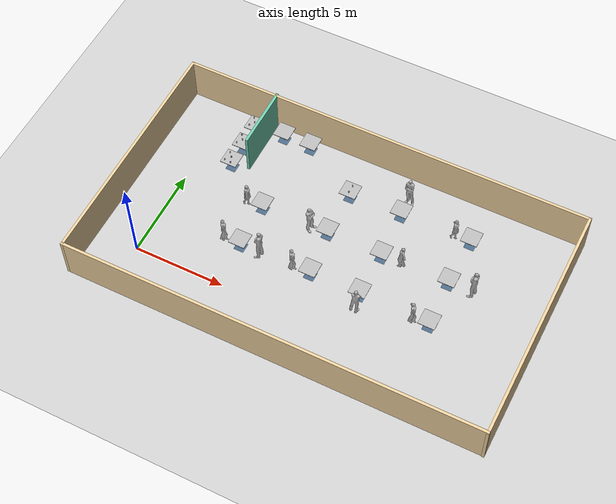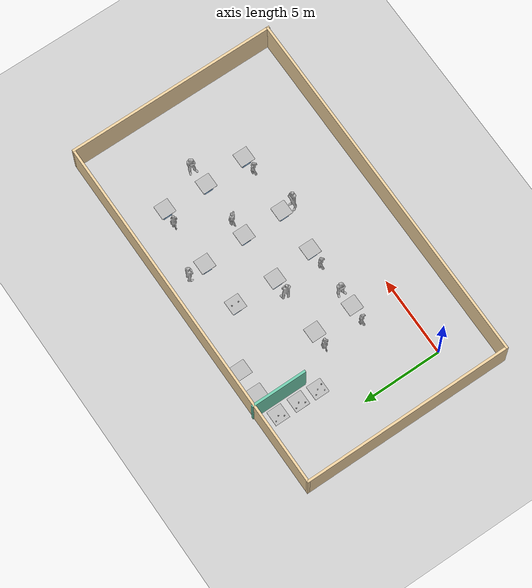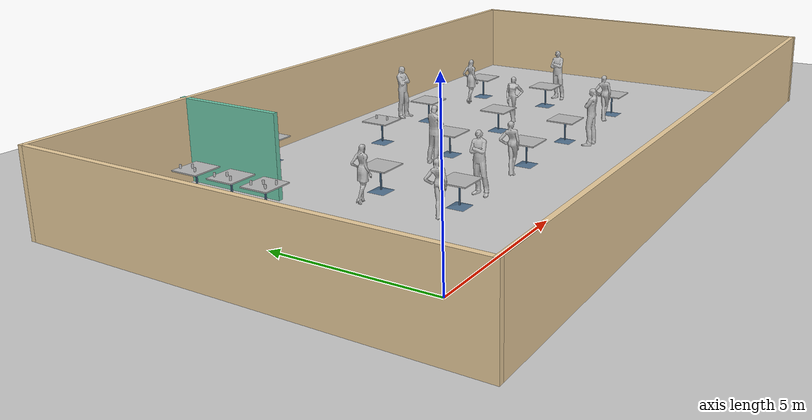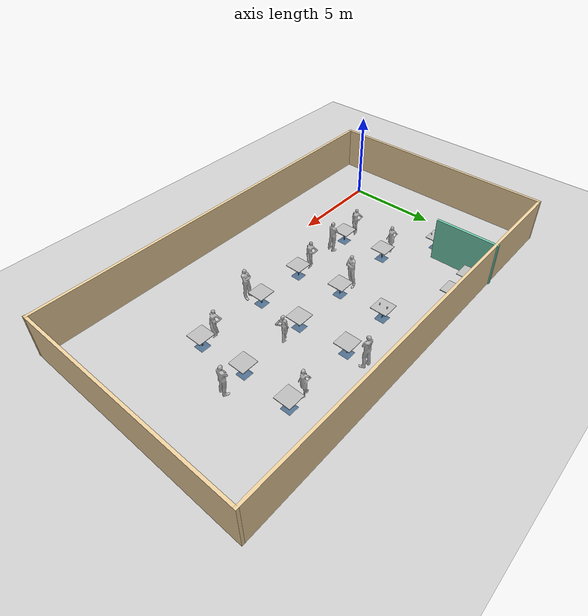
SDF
<sdf version="1.6">
 <world name="default">
  <light name="sun" type="directional">
   <pose>0 0 10 0 -0 0</pose>
   <diffuse>0.8 0.8 0.8 1</diffuse>
   <specular>0.2 0.2 0.2 1</specular>
   <attenuation>
    <range>1000</range>
    <constant>0.9</constant>
    <linear>0.01</linear>
    <quadratic>0.001</quadratic>
   </attenuation>
   <direction>-0.5 0.1 -0.9</direction>
  </light>
  <model name="ground_plane">
   <static>1</static>
   <link name="link">
    <collision name="collision">
     <geometry><plane><normal>0 0 1</normal><size>100 100</size></plane></geometry>
     <surface><friction><ode><mu>100</mu><mu2>50</mu2></ode></friction></surface>
    </collision>
    <visual name="visual">
     <cast_shadows>0</cast_shadows>
     <geometry><plane><normal>0 0 1</normal><size>100 100</size></plane></geometry>
     <material>
      <script><uri>file://media/materials/scripts/gazebo.material</uri><name>Gazebo/Grey</name></script>
     </material>
    </visual>
   </link>
  </model>
  <gravity>0 0 -9.8</gravity>
  <magnetic_field>6e-06 2.3e-05 -4.2e-05</magnetic_field>
  <atmosphere type="adiabatic"/>
  <physics name="default_physics" default="0" type="ode">
   <max_step_size>0.001</max_step_size>
   <real_time_factor>1</real_time_factor>
   <real_time_update_rate>1000</real_time_update_rate>
  </physics>
  <scene><ambient>0.4 0.4 0.4 1</ambient><background>0.7 0.7 0.7 1</background><shadows>1</shadows></scene>
  <audio><device>default</device></audio>
  <spherical_coordinates>
   <surface_model>EARTH_WGS84</surface_model>
   <latitude_deg>0</latitude_deg>
   <longitude_deg>0</longitude_deg>
   <elevation>0</elevation>
   <heading_deg>0</heading_deg>
  </spherical_coordinates>
  <model name="desk_1">
   <static>1</static>
   <link name="link">
    <collision name="surface">
     <pose>0 0 0.755 0 -0 0</pose>
     <geometry><box><size>0.913 0.913 0.04</size></box></geometry>
    </collision>
    <collision name="column">
     <pose>0 0 0.37 0 -0 0</pose>
     <geometry><box><size>0.042 0.042 0.74</size></box></geometry>
    </collision>
    <collision name="base">
     <pose>0 0 0.02 0 -0 0</pose>
     <geometry><box><size>0.56 0.56 0.04</size></box></geometry>
    </collision>
    <visual name="visual">
     <geometry><mesh><uri>model://cafe_table/meshes/cafe_table.dae</uri></mesh></geometry>
    </visual>
   </link>
   <pose>1.93216 9.38736 0 0 -0 0</pose>
  </model>
  <model name="desk_4">
   <static>1</static>
   <link name="link">
    <collision name="surface">
     <pose>0 0 0.755 0 -0 0</pose>
     <geometry><box><size>0.913 0.913 0.04</size></box></geometry>
    </collision>
    <collision name="column">
     <pose>0 0 0.37 0 -0 0</pose>
     <geometry><box><size>0.042 0.042 0.74</size></box></geometry>
    </collision>
    <collision name="base">
     <pose>0 0 0.02 0 -0 0</pose>
     <geometry><box><size>0.56 0.56 0.04</size></box></geometry>
    </collision>
    <visual name="visual">
     <geometry><mesh><uri>model://cafe_table/meshes/cafe_table.dae</uri></mesh></geometry>
    </visual>
   </link>
   <pose>3.55142 9.65624 0 0 -0 0</pose>
  </model>
  <model name="table_1">
   <static>1</static>
   <link name="link">
    <collision name="surface">
     <pose>0 0 0.755 0 -0 0</pose>
     <geometry><box><size>0.913 0.913 0.04</size></box></geometry>
    </collision>
    <collision name="column">
     <pose>0 0 0.37 0 -0 0</pose>
     <geometry><box><size>0.042 0.042 0.74</size></box></geometry>
    </collision>
    <collision name="base">
     <pose>0 0 0.02 0 -0 0</pose>
     <geometry><box><size>0.56 0.56 0.04</size></box></geometry>
    </collision>
    <visual name="visual">
     <geometry><mesh><uri>model://cafe_table/meshes/cafe_table.dae</uri></mesh></geometry>
    </visual>
   </link>
   <pose>4.66793 5.06571 0 0 -0 0</pose>
  </model>
  <model name="table_2">
   <static>1</static>
   <link name="link">
    <collision name="surface">
     <pose>0 0 0.755 0 -0 0</pose>
     <geometry><box><size>0.913 0.913 0.04</size></box></geometry>
    </collision>
    <collision name="column">
     <pose>0 0 0.37 0 -0 0</pose>
     <geometry><box><size>0.042 0.042 0.74</size></box></geometry>
    </collision>
    <collision name="base">
     <pose>0 0 0.02 0 -0 0</pose>
     <geometry><box><size>0.56 0.56 0.04</size></box></geometry>
    </collision>
    <visual name="visual">
     <geometry><mesh><uri>model://cafe_table/meshes/cafe_table.dae</uri></mesh></geometry>
    </visual>
   </link>
   <pose>8.43545 5.1235 0 0 -0 0</pose>
  </model>
  <model name="table_3">
   <static>1</static>
   <link name="link">
    <collision name="surface">
     <pose>0 0 0.755 0 -0 0</pose>
     <geometry><box><size>0.913 0.913 0.04</size></box></geometry>
    </collision>
    <collision name="column">
     <pose>0 0 0.37 0 -0 0</pose>
     <geometry><box><size>0.042 0.042 0.74</size></box></geometry>
    </collision>
    <collision name="base">
     <pose>0 0 0.02 0 -0 0</pose>
     <geometry><box><size>0.56 0.56 0.04</size></box></geometry>
    </collision>
    <visual name="visual">
     <geometry><mesh><uri>model://cafe_table/meshes/cafe_table.dae</uri></mesh></geometry>
    </visual>
   </link>
   <pose>4.74179 2.50458 0 0 -0 0</pose>
  </model>
  <model name="table_4">
   <static>1</static>
   <link name="link">
    <collision name="surface">
     <pose>0 0 0.755 0 -0 0</pose>
     <geometry><box><size>0.913 0.913 0.04</size></box></geometry>
    </collision>
    <collision name="column">
     <pose>0 0 0.37 0 -0 0</pose>
     <geometry><box><size>0.042 0.042 0.74</size></box></geometry>
    </collision>
    <collision name="base">
     <pose>0 0 0.02 0 -0 0</pose>
     <geometry><box><size>0.56 0.56 0.04</size></box></geometry>
    </collision>
    <visual name="visual">
     <geometry><mesh><uri>model://cafe_table/meshes/cafe_table.dae</uri></mesh></geometry>
    </visual>
   </link>
   <pose>8.736 2.5498 0 0 -0 0</pose>
  </model>
  <model name="table_5">
   <static>1</static>
   <link name="link">
    <collision name="surface">
     <pose>0 0 0.755 0 -0 0</pose>
     <geometry><box><size>0.913 0.913 0.04</size></box></geometry>
    </collision>
    <collision name="column">
     <pose>0 0 0.37 0 -0 0</pose>
     <geometry><box><size>0.042 0.042 0.74</size></box></geometry>
    </collision>
    <collision name="base">
     <pose>0 0 0.02 0 -0 0</pose>
     <geometry><box><size>0.56 0.56 0.04</size></box></geometry>
    </collision>
    <visual name="visual">
     <geometry><mesh><uri>model://cafe_table/meshes/cafe_table.dae</uri></mesh></geometry>
    </visual>
   </link>
   <pose>11.5231 5.09156 0 0 -0 0</pose>
  </model>
  <model name="commensale_1">
   <link name="link">
    <inertial>
     <mass>20</mass>
     <inertia><ixx>0</ixx><ixy>0</ixy><ixz>0</ixz><iyy>0</iyy><iyz>0</iyz><izz>0</izz></inertia>
    </inertial>
    <collision name="collision">
     <geometry><mesh><uri>model://citizen_extras_female_02/meshes/mesh.dae</uri></mesh></geometry>
    </collision>
    <visual name="visual">
     <geometry><mesh><uri>model://citizen_extras_female_02/meshes/mesh.dae</uri></mesh></geometry>
    </visual>
   </link>
   <pose>3.73256 5.01477 -0.061494 0.001607 -0.025058 1.66395</pose>
  </model>
  <model name="commensale_5">
   <link name="link">
    <inertial>
     <mass>20</mass>
     <inertia><ixx>0</ixx><ixy>0</ixy><ixz>0</ixz><iyy>0</iyy><iyz>0</iyz><izz>0</izz></inertia>
    </inertial>
    <collision name="collision">
     <geometry><mesh><uri>model://citizen_extras_male_03/meshes/mesh.dae</uri></mesh></geometry>
    </collision>
    <visual name="visual">
     <geometry><mesh><uri>model://citizen_extras_male_03/meshes/mesh.dae</uri></mesh></geometry>
    </visual>
   </link>
   <pose>7.50869 5.1222 0.004913 0.012563 0.002314 1.49916</pose>
  </model>
  <model name="commensale_4">
   <link name="link">
    <inertial>
     <mass>20</mass>
     <inertia><ixx>0</ixx><ixy>0</ixy><ixz>0</ixz><iyy>0</iyy><iyz>0</iyz><izz>0</izz></inertia>
    </inertial>
    <collision name="collision">
     <geometry><mesh><uri>model://citizen_extras_male_03/meshes/mesh.dae</uri></mesh></geometry>
    </collision>
    <visual name="visual">
     <geometry><mesh><uri>model://citizen_extras_male_03/meshes/mesh.dae</uri></mesh></geometry>
    </visual>
   </link>
   <pose>5.79936 2.44152 0.008272 0.012568 0.002313 -1.48164</pose>
  </model>
  <model name="commensale_2">
   <link name="link">
    <inertial>
     <mass>20</mass>
     <inertia><ixx>0</ixx><ixy>0</ixy><ixz>0</ixz><iyy>0</iyy><iyz>0</iyz><izz>0</izz></inertia>
    </inertial>
    <collision name="collision">
     <geometry><mesh><uri>model://citizen_extras_female_03/meshes/mesh.dae</uri></mesh></geometry>
    </collision>
    <visual name="visual">
     <geometry><mesh><uri>model://citizen_extras_female_03/meshes/mesh.dae</uri></mesh></geometry>
    </visual>
   </link>
   <pose>3.77442 2.51764 0.011073 0.011358 0.012634 1.61389</pose>
  </model>
  <model name="commensale_3">
   <link name="link">
    <inertial>
     <mass>20</mass>
     <inertia><ixx>0</ixx><ixy>0</ixy><ixz>0</ixz><iyy>0</iyy><iyz>0</iyz><izz>0</izz></inertia>
    </inertial>
    <collision name="collision">
     <geometry><mesh><uri>model://citizen_extras_female_03/meshes/mesh.dae</uri></mesh></geometry>
    </collision>
    <visual name="visual">
     <geometry><mesh><uri>model://citizen_extras_female_03/meshes/mesh.dae</uri></mesh></geometry>
    </visual>
   </link>
   <pose>7.73792 2.4982 0.001653 0.011346 0.012677 1.50258</pose>
  </model>
  <model name="lattina_1">
   <link name="link">
    <inertial>
     <pose>0 0 0.06 0 -0 0</pose>
     <mass>0.39</mass>
     <inertia>
      <ixx>0.00055575</ixx>
      <ixy>0</ixy>
      <ixz>0</ixz>
      <iyy>0.00055575</iyy>
      <iyz>0</iyz>
      <izz>0.0001755</izz>
     </inertia>
    </inertial>
    <collision name="collision">
     <pose>0.003937 0.004724 -0.18 0 -0 0</pose>
     <geometry><mesh><uri>model://coke_can/meshes/coke_can.dae</uri></mesh></geometry>
     <surface>
      <friction><ode><mu>1</mu><mu2>1</mu2></ode></friction>
      <contact><ode><kp>1e+07</kp><kd>1</kd><min_depth>0.001</min_depth><max_vel>0.1</max_vel></ode></contact>
     </surface>
    </collision>
    <visual name="visual">
     <pose>0.003937 0.004724 -0.18 0 -0 0</pose>
     <geometry><mesh><uri>model://coke_can/meshes/coke_can.dae</uri></mesh></geometry>
    </visual>
   </link>
   <pose>1.6805 9.70392 0.783047 0 -0 0</pose>
  </model>
  <model name="lattina_2">
   <link name="link">
    <inertial>
     <pose>0 0 0.06 0 -0 0</pose>
     <mass>0.39</mass>
     <inertia>
      <ixx>0.00055575</ixx>
      <ixy>0</ixy>
      <ixz>0</ixz>
      <iyy>0.00055575</iyy>
      <iyz>0</iyz>
      <izz>0.0001755</izz>
     </inertia>
    </inertial>
    <collision name="collision">
     <pose>0.003937 0.004724 -0.18 0 -0 0</pose>
     <geometry><mesh><uri>model://coke_can/meshes/coke_can.dae</uri></mesh></geometry>
     <surface>
      <friction><ode><mu>1</mu><mu2>1</mu2></ode></friction>
      <contact><ode><kp>1e+07</kp><kd>1</kd><min_depth>0.001</min_depth><max_vel>0.1</max_vel></ode></contact>
     </surface>
    </collision>
    <visual name="visual">
     <pose>0.003937 0.004724 -0.18 0 -0 0</pose>
     <geometry><mesh><uri>model://coke_can/meshes/coke_can.dae</uri></mesh></geometry>
    </visual>
   </link>
   <pose>1.68411 9.15615 0.782936 0 -0 0</pose>
  </model>
  <model name="lattina_3">
   <link name="link">
    <inertial>
     <pose>0 0 0.06 0 -0 0</pose>
     <mass>0.39</mass>
     <inertia>
      <ixx>0.00055575</ixx>
      <ixy>0</ixy>
      <ixz>0</ixz>
      <iyy>0.00055575</iyy>
      <iyz>0</iyz>
      <izz>0.0001755</izz>
     </inertia>
    </inertial>
    <collision name="collision">
     <pose>0.003937 0.004724 -0.18 0 -0 0</pose>
     <geometry><mesh><uri>model://coke_can/meshes/coke_can.dae</uri></mesh></geometry>
     <surface>
      <friction><ode><mu>1</mu><mu2>1</mu2></ode></friction>
      <contact><ode><kp>1e+07</kp><kd>1</kd><min_depth>0.001</min_depth><max_vel>0.1</max_vel></ode></contact>
     </surface>
    </collision>
    <visual name="visual">
     <pose>0.003937 0.004724 -0.18 0 -0 0</pose>
     <geometry><mesh><uri>model://coke_can/meshes/coke_can.dae</uri></mesh></geometry>
    </visual>
   </link>
   <pose>1.85898 9.42704 0.783798 0 -0 0</pose>
  </model>
  <model name="cafe3_1">
   <pose>9.0601 3.89289 0 0 -0 0</pose>
   <link name="Wall_20">
    <collision name="Wall_20_Collision">
     <geometry><box><size>13.217 0.15 2.5</size></box></geometry>
     <pose>0 0 1.25 0 -0 0</pose>
    </collision>
    <visual name="Wall_20_Visual">
     <pose>0 0 1.25 0 -0 0</pose>
     <geometry><box><size>13.217 0.15 2.5</size></box></geometry>
     <material>
      <script><uri>file://media/materials/scripts/gazebo.material</uri><name>Gazebo/Grey</name></script>
      <ambient>0.921569 0.807843 0.615686 1</ambient>
     </material>
     <meta><layer>0</layer></meta>
    </visual>
    <pose>-11.425 -0.018864 0 0 -0 -1.5708</pose>
   </link>
   <link name="Wall_21">
    <collision name="Wall_21_Collision">
     <geometry><box><size>23 0.15 2.5</size></box></geometry>
     <pose>0 0 1.25 0 -0 0</pose>
    </collision>
    <visual name="Wall_21_Visual">
     <pose>0 0 1.25 0 -0 0</pose>
     <geometry><box><size>23 0.15 2.5</size></box></geometry>
     <material>
      <script><uri>file://media/materials/scripts/gazebo.material</uri><name>Gazebo/Grey</name></script>
      <ambient>0.921569 0.807843 0.615686 1</ambient>
     </material>
     <meta><layer>0</layer></meta>
    </visual>
    <pose>0 -6.55235 0 0 -0 0</pose>
   </link>
   <link name="Wall_25">
    <collision name="Wall_25_Collision">
     <geometry><box><size>23 0.15 2.5</size></box></geometry>
     <pose>0 0 1.25 0 -0 0</pose>
    </collision>
    <visual name="Wall_25_Visual">
     <pose>0 0 1.25 0 -0 0</pose>
     <geometry><box><size>23 0.15 2.5</size></box></geometry>
     <material>
      <script><uri>file://media/materials/scripts/gazebo.material</uri><name>Gazebo/Grey</name></script>
      <ambient>0.921569 0.807843 0.615686 1</ambient>
     </material>
     <meta><layer>0</layer></meta>
    </visual>
    <pose>0 6.51462 0 0 -0 0</pose>
   </link>
   <link name="Wall_28">
    <collision name="Wall_28_Collision">
     <geometry><box><size>13.25 0.15 2.5</size></box></geometry>
     <pose>0 0 1.25 0 -0 0</pose>
    </collision>
    <visual name="Wall_28_Visual">
     <pose>0 0 1.25 0 -0 0</pose>
     <geometry><box><size>13.25 0.15 2.5</size></box></geometry>
     <material>
      <script><uri>file://media/materials/scripts/gazebo.material</uri><name>Gazebo/Grey</name></script>
      <ambient>0.921569 0.807843 0.615686 1</ambient>
     </material>
     <meta><layer>0</layer></meta>
    </visual>
    <pose>11.425 -0.035378 0 0 -0 -1.5708</pose>
   </link>
   <link name="Wall_32">
    <collision name="Wall_32_Collision">
     <geometry><box><size>3.5 0.15 2.5</size></box></geometry>
     <pose>0 0 1.25 0 -0 0</pose>
    </collision>
    <visual name="Wall_32_Visual">
     <pose>0 0 1.25 0 -0 0</pose>
     <geometry><box><size>3.5 0.15 2.5</size></box></geometry>
     <material>
      <script><uri>file://media/materials/scripts/gazebo.material</uri><name>Gazebo/Grey</name></script>
      <ambient>0.435294 0.796078 0.67451 1</ambient>
     </material>
     <meta><layer>0</layer></meta>
    </visual>
    <pose>-6.33049 4.91038 0 0 -0 -1.5708</pose>
   </link>
   <static>1</static>
  </model>
  <model name="desk_2">
   <static>1</static>
   <link name="link">
    <collision name="surface">
     <pose>0 0 0.755 0 -0 0</pose>
     <geometry><box><size>0.913 0.913 0.04</size></box></geometry>
    </collision>
    <collision name="column">
     <pose>0 0 0.37 0 -0 0</pose>
     <geometry><box><size>0.042 0.042 0.74</size></box></geometry>
    </collision>
    <collision name="base">
     <pose>0 0 0.02 0 -0 0</pose>
     <geometry><box><size>0.56 0.56 0.04</size></box></geometry>
    </collision>
    <visual name="visual">
     <geometry><mesh><uri>model://cafe_table/meshes/cafe_table.dae</uri></mesh></geometry>
    </visual>
   </link>
   <pose>1.9232 8.06022 0 0 -0 0</pose>
  </model>
  <model name="desk_3">
   <static>1</static>
   <link name="link">
    <collision name="surface">
     <pose>0 0 0.755 0 -0 0</pose>
     <geometry><box><size>0.913 0.913 0.04</size></box></geometry>
    </collision>
    <collision name="column">
     <pose>0 0 0.37 0 -0 0</pose>
     <geometry><box><size>0.042 0.042 0.74</size></box></geometry>
    </collision>
    <collision name="base">
     <pose>0 0 0.02 0 -0 0</pose>
     <geometry><box><size>0.56 0.56 0.04</size></box></geometry>
    </collision>
    <visual name="visual">
     <geometry><mesh><uri>model://cafe_table/meshes/cafe_table.dae</uri></mesh></geometry>
    </visual>
   </link>
   <pose>1.89339 6.80219 0 0 -0 0</pose>
  </model>
  <model name="lattina_4">
   <link name="link">
    <inertial>
     <pose>0 0 0.06 0 -0 0</pose>
     <mass>0.39</mass>
     <inertia>
      <ixx>0.00055575</ixx>
      <ixy>0</ixy>
      <ixz>0</ixz>
      <iyy>0.00055575</iyy>
      <iyz>0</iyz>
      <izz>0.0001755</izz>
     </inertia>
    </inertial>
    <collision name="collision">
     <pose>0.003937 0.004724 -0.18 0 -0 0</pose>
     <geometry><mesh><uri>model://coke_can/meshes/coke_can.dae</uri></mesh></geometry>
     <surface>
      <friction><ode><mu>1</mu><mu2>1</mu2></ode></friction>
      <contact><ode><kp>1e+07</kp><kd>1</kd><min_depth>0.001</min_depth><max_vel>0.1</max_vel></ode></contact>
     </surface>
    </collision>
    <visual name="visual">
     <pose>0.003937 0.004724 -0.18 0 -0 0</pose>
     <geometry><mesh><uri>model://coke_can/meshes/coke_can.dae</uri></mesh></geometry>
    </visual>
   </link>
   <pose>1.65218 8.38176 0.783047 0 -0 0</pose>
  </model>
  <model name="lattina_5">
   <link name="link">
    <inertial>
     <pose>0 0 0.06 0 -0 0</pose>
     <mass>0.39</mass>
     <inertia>
      <ixx>0.00055575</ixx>
      <ixy>0</ixy>
      <ixz>0</ixz>
      <iyy>0.00055575</iyy>
      <iyz>0</iyz>
      <izz>0.0001755</izz>
     </inertia>
    </inertial>
    <collision name="collision">
     <pose>0.003937 0.004724 -0.18 0 -0 0</pose>
     <geometry><mesh><uri>model://coke_can/meshes/coke_can.dae</uri></mesh></geometry>
     <surface>
      <friction><ode><mu>1</mu><mu2>1</mu2></ode></friction>
      <contact><ode><kp>1e+07</kp><kd>1</kd><min_depth>0.001</min_depth><max_vel>0.1</max_vel></ode></contact>
     </surface>
    </collision>
    <visual name="visual">
     <pose>0.003937 0.004724 -0.18 0 -0 0</pose>
     <geometry><mesh><uri>model://coke_can/meshes/coke_can.dae</uri></mesh></geometry>
    </visual>
   </link>
   <pose>1.84047 8.10348 0.783047 0 -0 0</pose>
  </model>
  <model name="lattina_6">
   <link name="link">
    <inertial>
     <pose>0 0 0.06 0 -0 0</pose>
     <mass>0.39</mass>
     <inertia>
      <ixx>0.00055575</ixx>
      <ixy>0</ixy>
      <ixz>0</ixz>
      <iyy>0.00055575</iyy>
      <iyz>0</iyz>
      <izz>0.0001755</izz>
     </inertia>
    </inertial>
    <collision name="collision">
     <pose>0.003937 0.004724 -0.18 0 -0 0</pose>
     <geometry><mesh><uri>model://coke_can/meshes/coke_can.dae</uri></mesh></geometry>
     <surface>
      <friction><ode><mu>1</mu><mu2>1</mu2></ode></friction>
      <contact><ode><kp>1e+07</kp><kd>1</kd><min_depth>0.001</min_depth><max_vel>0.1</max_vel></ode></contact>
     </surface>
    </collision>
    <visual name="visual">
     <pose>0.003937 0.004724 -0.18 0 -0 0</pose>
     <geometry><mesh><uri>model://coke_can/meshes/coke_can.dae</uri></mesh></geometry>
    </visual>
   </link>
   <pose>1.64827 7.79086 0.783047 0 -0 0</pose>
  </model>
  <model name="lattina_7">
   <link name="link">
    <inertial>
     <pose>0 0 0.06 0 -0 0</pose>
     <mass>0.39</mass>
     <inertia>
      <ixx>0.00055575</ixx>
      <ixy>0</ixy>
      <ixz>0</ixz>
      <iyy>0.00055575</iyy>
      <iyz>0</iyz>
      <izz>0.0001755</izz>
     </inertia>
    </inertial>
    <collision name="collision">
     <pose>0.003937 0.004724 -0.18 0 -0 0</pose>
     <geometry><mesh><uri>model://coke_can/meshes/coke_can.dae</uri></mesh></geometry>
     <surface>
      <friction><ode><mu>1</mu><mu2>1</mu2></ode></friction>
      <contact><ode><kp>1e+07</kp><kd>1</kd><min_depth>0.001</min_depth><max_vel>0.1</max_vel></ode></contact>
     </surface>
    </collision>
    <visual name="visual">
     <pose>0.003937 0.004724 -0.18 0 -0 0</pose>
     <geometry><mesh><uri>model://coke_can/meshes/coke_can.dae</uri></mesh></geometry>
    </visual>
   </link>
   <pose>1.65326 7.06308 0.783047 0 -0 0</pose>
  </model>
  <model name="lattina_8">
   <link name="link">
    <inertial>
     <pose>0 0 0.06 0 -0 0</pose>
     <mass>0.39</mass>
     <inertia>
      <ixx>0.00055575</ixx>
      <ixy>0</ixy>
      <ixz>0</ixz>
      <iyy>0.00055575</iyy>
      <iyz>0</iyz>
      <izz>0.0001755</izz>
     </inertia>
    </inertial>
    <collision name="collision">
     <pose>0.003937 0.004724 -0.18 0 -0 0</pose>
     <geometry><mesh><uri>model://coke_can/meshes/coke_can.dae</uri></mesh></geometry>
     <surface>
      <friction><ode><mu>1</mu><mu2>1</mu2></ode></friction>
      <contact><ode><kp>1e+07</kp><kd>1</kd><min_depth>0.001</min_depth><max_vel>0.1</max_vel></ode></contact>
     </surface>
    </collision>
    <visual name="visual">
     <pose>0.003937 0.004724 -0.18 0 -0 0</pose>
     <geometry><mesh><uri>model://coke_can/meshes/coke_can.dae</uri></mesh></geometry>
    </visual>
   </link>
   <pose>1.86065 6.82305 0.783047 0 -0 0</pose>
  </model>
  <model name="lattina_9">
   <link name="link">
    <inertial>
     <pose>0 0 0.06 0 -0 0</pose>
     <mass>0.39</mass>
     <inertia>
      <ixx>0.00055575</ixx>
      <ixy>0</ixy>
      <ixz>0</ixz>
      <iyy>0.00055575</iyy>
      <iyz>0</iyz>
      <izz>0.0001755</izz>
     </inertia>
    </inertial>
    <collision name="collision">
     <pose>0.003937 0.004724 -0.18 0 -0 0</pose>
     <geometry><mesh><uri>model://coke_can/meshes/coke_can.dae</uri></mesh></geometry>
     <surface>
      <friction><ode><mu>1</mu><mu2>1</mu2></ode></friction>
      <contact><ode><kp>1e+07</kp><kd>1</kd><min_depth>0.001</min_depth><max_vel>0.1</max_vel></ode></contact>
     </surface>
    </collision>
    <visual name="visual">
     <pose>0.003937 0.004724 -0.18 0 -0 0</pose>
     <geometry><mesh><uri>model://coke_can/meshes/coke_can.dae</uri></mesh></geometry>
    </visual>
   </link>
   <pose>1.62117 6.53176 0.783047 0 -0 0</pose>
  </model>
  <model name="lattina_10">
   <link name="link">
    <inertial>
     <pose>0 0 0.06 0 -0 0</pose>
     <mass>0.39</mass>
     <inertia>
      <ixx>0.00055575</ixx>
      <ixy>0</ixy>
      <ixz>0</ixz>
      <iyy>0.00055575</iyy>
      <iyz>0</iyz>
      <izz>0.0001755</izz>
     </inertia>
    </inertial>
    <collision name="collision">
     <pose>0.003937 0.004724 -0.18 0 -0 0</pose>
     <geometry><mesh><uri>model://coke_can/meshes/coke_can.dae</uri></mesh></geometry>
     <surface>
      <friction><ode><mu>1</mu><mu2>1</mu2></ode></friction>
      <contact><ode><kp>1e+07</kp><kd>1</kd><min_depth>0.001</min_depth><max_vel>0.1</max_vel></ode></contact>
     </surface>
    </collision>
    <visual name="visual">
     <pose>0.003937 0.004724 -0.18 0 -0 0</pose>
     <geometry><mesh><uri>model://coke_can/meshes/coke_can.dae</uri></mesh></geometry>
    </visual>
   </link>
   <pose>1.99259 6.4844 0.783047 0 -0 0</pose>
  </model>
  <model name="desk_5">
   <static>1</static>
   <link name="link">
    <collision name="surface">
     <pose>0 0 0.755 0 -0 0</pose>
     <geometry><box><size>0.913 0.913 0.04</size></box></geometry>
    </collision>
    <collision name="column">
     <pose>0 0 0.37 0 -0 0</pose>
     <geometry><box><size>0.042 0.042 0.74</size></box></geometry>
    </collision>
    <collision name="base">
     <pose>0 0 0.02 0 -0 0</pose>
     <geometry><box><size>0.56 0.56 0.04</size></box></geometry>
    </collision>
    <visual name="visual">
     <geometry><mesh><uri>model://cafe_table/meshes/cafe_table.dae</uri></mesh></geometry>
    </visual>
   </link>
   <pose>5.1524 9.64569 0 0 -0 0</pose>
  </model>
  <model name="desk_6">
   <static>1</static>
   <link name="link">
    <collision name="surface">
     <pose>0 0 0.755 0 -0 0</pose>
     <geometry><box><size>0.913 0.913 0.04</size></box></geometry>
    </collision>
    <collision name="column">
     <pose>0 0 0.37 0 -0 0</pose>
     <geometry><box><size>0.042 0.042 0.74</size></box></geometry>
    </collision>
    <collision name="base">
     <pose>0 0 0.02 0 -0 0</pose>
     <geometry><box><size>0.56 0.56 0.04</size></box></geometry>
    </collision>
    <visual name="visual">
     <geometry><mesh><uri>model://cafe_table/meshes/cafe_table.dae</uri></mesh></geometry>
    </visual>
   </link>
   <pose>8.44554 7.76342 0 0 -0 0</pose>
  </model>
  <model name="table_6">
   <static>1</static>
   <link name="link">
    <collision name="surface">
     <pose>0 0 0.755 0 -0 0</pose>
     <geometry><box><size>0.913 0.913 0.04</size></box></geometry>
    </collision>
    <collision name="column">
     <pose>0 0 0.37 0 -0 0</pose>
     <geometry><box><size>0.042 0.042 0.74</size></box></geometry>
    </collision>
    <collision name="base">
     <pose>0 0 0.02 0 -0 0</pose>
     <geometry><box><size>0.56 0.56 0.04</size></box></geometry>
    </collision>
    <visual name="visual">
     <geometry><mesh><uri>model://cafe_table/meshes/cafe_table.dae</uri></mesh></geometry>
    </visual>
   </link>
   <pose>11.5148 2.55764 0 0 -0 0</pose>
  </model>
  <model name="table_7">
   <static>1</static>
   <link name="link">
    <collision name="surface">
     <pose>0 0 0.755 0 -0 0</pose>
     <geometry><box><size>0.913 0.913 0.04</size></box></geometry>
    </collision>
    <collision name="column">
     <pose>0 0 0.37 0 -0 0</pose>
     <geometry><box><size>0.042 0.042 0.74</size></box></geometry>
    </collision>
    <collision name="base">
     <pose>0 0 0.02 0 -0 0</pose>
     <geometry><box><size>0.56 0.56 0.04</size></box></geometry>
    </collision>
    <visual name="visual">
     <geometry><mesh><uri>model://cafe_table/meshes/cafe_table.dae</uri></mesh></geometry>
    </visual>
   </link>
   <pose>15.3623 2.49219 0 0 -0 0</pose>
  </model>
  <model name="table_8">
   <static>1</static>
   <link name="link">
    <collision name="surface">
     <pose>0 0 0.755 0 -0 0</pose>
     <geometry><box><size>0.913 0.913 0.04</size></box></geometry>
    </collision>
    <collision name="column">
     <pose>0 0 0.37 0 -0 0</pose>
     <geometry><box><size>0.042 0.042 0.74</size></box></geometry>
    </collision>
    <collision name="base">
     <pose>0 0 0.02 0 -0 0</pose>
     <geometry><box><size>0.56 0.56 0.04</size></box></geometry>
    </collision>
    <visual name="visual">
     <geometry><mesh><uri>model://cafe_table/meshes/cafe_table.dae</uri></mesh></geometry>
    </visual>
   </link>
   <pose>15.2404 5.13614 0 0 -0 0</pose>
  </model>
  <model name="table_9">
   <static>1</static>
   <link name="link">
    <collision name="surface">
     <pose>0 0 0.755 0 -0 0</pose>
     <geometry><box><size>0.913 0.913 0.04</size></box></geometry>
    </collision>
    <collision name="column">
     <pose>0 0 0.37 0 -0 0</pose>
     <geometry><box><size>0.042 0.042 0.74</size></box></geometry>
    </collision>
    <collision name="base">
     <pose>0 0 0.02 0 -0 0</pose>
     <geometry><box><size>0.56 0.56 0.04</size></box></geometry>
    </collision>
    <visual name="visual">
     <geometry><mesh><uri>model://cafe_table/meshes/cafe_table.dae</uri></mesh></geometry>
    </visual>
   </link>
   <pose>15.2951 7.87594 0 0 -0 0</pose>
  </model>
  <model name="table_10">
   <static>1</static>
   <link name="link">
    <collision name="surface">
     <pose>0 0 0.755 0 -0 0</pose>
     <geometry><box><size>0.913 0.913 0.04</size></box></geometry>
    </collision>
    <collision name="column">
     <pose>0 0 0.37 0 -0 0</pose>
     <geometry><box><size>0.042 0.042 0.74</size></box></geometry>
    </collision>
    <collision name="base">
     <pose>0 0 0.02 0 -0 0</pose>
     <geometry><box><size>0.56 0.56 0.04</size></box></geometry>
    </collision>
    <visual name="visual">
     <geometry><mesh><uri>model://cafe_table/meshes/cafe_table.dae</uri></mesh></geometry>
    </visual>
   </link>
   <pose>11.3584 7.84359 0 0 -0 0</pose>
  </model>
  <model name="commensale_5_clone">
   <link name="link">
    <inertial>
     <mass>20</mass>
     <inertia><ixx>0</ixx><ixy>0</ixy><ixz>0</ixz><iyy>0</iyy><iyz>0</iyz><izz>0</izz></inertia>
    </inertial>
    <collision name="collision">
     <geometry><mesh><uri>model://citizen_extras_male_03/meshes/mesh.dae</uri></mesh></geometry>
    </collision>
    <visual name="visual">
     <geometry><mesh><uri>model://citizen_extras_male_03/meshes/mesh.dae</uri></mesh></geometry>
    </visual>
   </link>
   <pose>11.3956 8.85115 0.004913 -0.001343 0.012704 0.005163</pose>
  </model>
  <model name="commensale_5_clone_0">
   <link name="link">
    <inertial>
     <mass>20</mass>
     <inertia><ixx>0</ixx><ixy>0</ixy><ixz>0</ixz><iyy>0</iyy><iyz>0</iyz><izz>0</izz></inertia>
    </inertial>
    <collision name="collision">
     <geometry><mesh><uri>model://citizen_extras_male_03/meshes/mesh.dae</uri></mesh></geometry>
    </collision>
    <visual name="visual">
     <geometry><mesh><uri>model://citizen_extras_male_03/meshes/mesh.dae</uri></mesh></geometry>
    </visual>
   </link>
   <pose>16.4803 5.17647 -0.00835 -0.012713 -0.001249 -1.55818</pose>
  </model>
  <model name="commensale_5_clone_1">
   <link name="link">
    <inertial>
     <mass>20</mass>
     <inertia><ixx>0</ixx><ixy>0</ixy><ixz>0</ixz><iyy>0</iyy><iyz>0</iyz><izz>0</izz></inertia>
    </inertial>
    <collision name="collision">
     <geometry><mesh><uri>model://citizen_extras_male_03/meshes/mesh.dae</uri></mesh></geometry>
    </collision>
    <visual name="visual">
     <geometry><mesh><uri>model://citizen_extras_male_03/meshes/mesh.dae</uri></mesh></geometry>
    </visual>
   </link>
   <pose>11.5717 1.74963 0.004913 -0.00084 -0.012747 -2.96529</pose>
  </model>
  <model name="commensale_3_clone">
   <link name="link">
    <inertial>
     <mass>20</mass>
     <inertia><ixx>0</ixx><ixy>0</ixy><ixz>0</ixz><iyy>0</iyy><iyz>0</iyz><izz>0</izz></inertia>
    </inertial>
    <collision name="collision">
     <geometry><mesh><uri>model://citizen_extras_female_03/meshes/mesh.dae</uri></mesh></geometry>
    </collision>
    <visual name="visual">
     <geometry><mesh><uri>model://citizen_extras_female_03/meshes/mesh.dae</uri></mesh></geometry>
    </visual>
   </link>
   <pose>14.4943 2.40496 -0.010374 0.011346 0.012677 1.50258</pose>
  </model>
  <model name="commensale_3_clone_0">
   <link name="link">
    <inertial>
     <mass>20</mass>
     <inertia><ixx>0</ixx><ixy>0</ixy><ixz>0</ixz><iyy>0</iyy><iyz>0</iyz><izz>0</izz></inertia>
    </inertial>
    <collision name="collision">
     <geometry><mesh><uri>model://citizen_extras_female_03/meshes/mesh.dae</uri></mesh></geometry>
    </collision>
    <visual name="visual">
     <geometry><mesh><uri>model://citizen_extras_female_03/meshes/mesh.dae</uri></mesh></geometry>
    </visual>
   </link>
   <pose>12.6065 5.13006 0.001653 -0.012363 -0.011688 -1.55559</pose>
  </model>
  <model name="commensale_1_clone">
   <link name="link">
    <inertial>
     <mass>20</mass>
     <inertia><ixx>0</ixx><ixy>0</ixy><ixz>0</ixz><iyy>0</iyy><iyz>0</iyz><izz>0</izz></inertia>
    </inertial>
    <collision name="collision">
     <geometry><mesh><uri>model://citizen_extras_female_02/meshes/mesh.dae</uri></mesh></geometry>
    </collision>
    <visual name="visual">
     <geometry><mesh><uri>model://citizen_extras_female_02/meshes/mesh.dae</uri></mesh></geometry>
    </visual>
   </link>
   <pose>14.3312 7.88604 -0.062889 0.001607 -0.025058 1.66395</pose>
  </model>
  <model name="lattina_11">
   <link name="link">
    <inertial>
     <pose>0 0 0.06 0 -0 0</pose>
     <mass>0.39</mass>
     <inertia>
      <ixx>0.00055575</ixx>
      <ixy>0</ixy>
      <ixz>0</ixz>
      <iyy>0.00055575</iyy>
      <iyz>0</iyz>
      <izz>0.0001755</izz>
     </inertia>
    </inertial>
    <collision name="collision">
     <pose>0.003937 0.004724 -0.18 0 -0 0</pose>
     <geometry><mesh><uri>model://coke_can/meshes/coke_can.dae</uri></mesh></geometry>
     <surface>
      <friction><ode><mu>1</mu><mu2>1</mu2></ode></friction>
      <contact><ode><kp>1e+07</kp><kd>1</kd><min_depth>0.001</min_depth><max_vel>0.1</max_vel></ode></contact>
     </surface>
    </collision>
    <visual name="visual">
     <pose>0.003937 0.004724 -0.18 0 -0 0</pose>
     <geometry><mesh><uri>model://coke_can/meshes/coke_can.dae</uri></mesh></geometry>
    </visual>
   </link>
   <pose>8.46028 7.98767 0.783047 0 -0 0</pose>
  </model>
  <model name="lattina_12">
   <link name="link">
    <inertial>
     <pose>0 0 0.06 0 -0 0</pose>
     <mass>0.39</mass>
     <inertia>
      <ixx>0.00055575</ixx>
      <ixy>0</ixy>
      <ixz>0</ixz>
      <iyy>0.00055575</iyy>
      <iyz>0</iyz>
      <izz>0.0001755</izz>
     </inertia>
    </inertial>
    <collision name="collision">
     <pose>0.003937 0.004724 -0.18 0 -0 0</pose>
     <geometry><mesh><uri>model://coke_can/meshes/coke_can.dae</uri></mesh></geometry>
     <surface>
      <friction><ode><mu>1</mu><mu2>1</mu2></ode></friction>
      <contact><ode><kp>1e+07</kp><kd>1</kd><min_depth>0.001</min_depth><max_vel>0.1</max_vel></ode></contact>
     </surface>
    </collision>
    <visual name="visual">
     <pose>0.003937 0.004724 -0.18 0 -0 0</pose>
     <geometry><mesh><uri>model://coke_can/meshes/coke_can.dae</uri></mesh></geometry>
    </visual>
   </link>
   <pose>8.45577 7.5636 0.783047 0 -0 0</pose>
  </model>
 </world>
</sdf>
